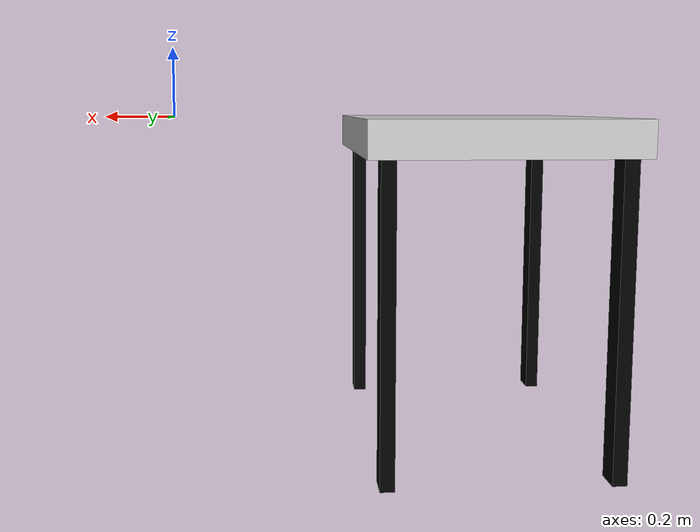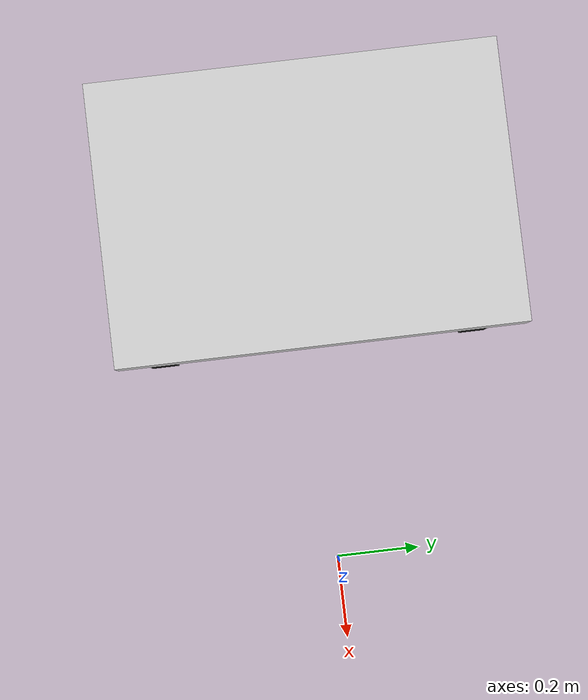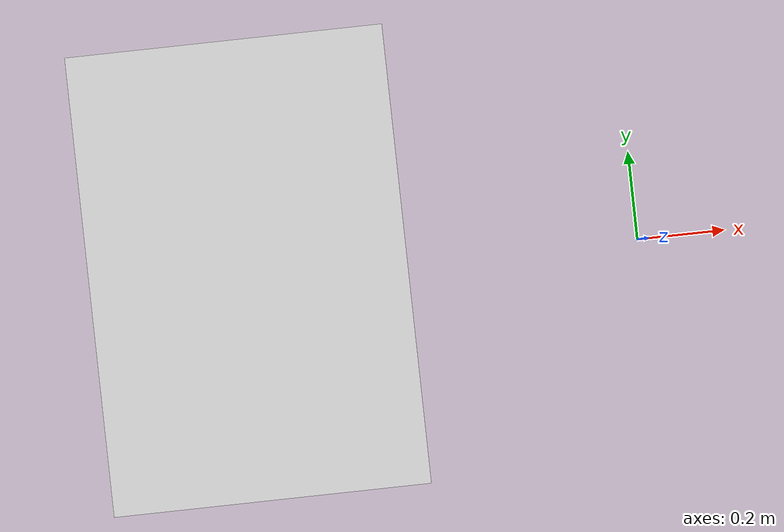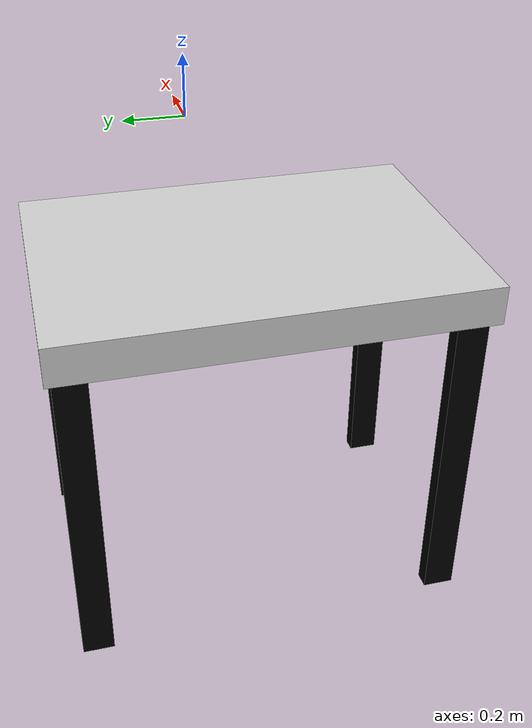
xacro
<?xml version="1.0"?>
<robot xmlns:xacro="http://www.ros.org/wiki/xacro"
       name="environment">

  <!-- MODELS -->
  <xacro:include filename="$(find boris_description)/model/table.urdf.xacro"/>
  <xacro:include filename="$(find boris_description)/model/wall.urdf.xacro"/>
  <xacro:include filename="$(find boris_description)/model/materials.urdf"/>

  <!-- WORKBENCH -->
  <link name="workbench_anchor"/>
  <xacro:model_table name="workbench"
                    parent="workbench_anchor"
                    length="0.725"
                    width="1.05"
                    height="0.960"
                    plate_thickness="0.1">
    <origin xyz="-1.25 0.55 0" rpy="0 0 0"/>
  </xacro:model_table>

</robot>

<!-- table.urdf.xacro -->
<robot xmlns:xacro="http://www.ros.org/wiki/xacro">

<xacro:property name="leg_width" value="0.08" />
<xacro:property name="border_offset" value="0.055" />

<!-- conversions -->
<!-- I couldn't make the simulation work with realistic values, so I tweaked the conversion values -->
<xacro:property name="mm_to_m" value="0.001"/>
<xacro:property name="mm2_to_m2" value="0.000001"/>
<xacro:property name="gr_to_Kg" value="0.001"/>

<!-- not so negligible, otherwise simulation fails -->
<xacro:property name="table_mass" value="${500000*gr_to_Kg}"/>
<xacro:property name="table_inertia">
    <origin xyz="0 0 0"/>
    <mass value="${table_mass}"/>
    <inertia ixx="${table_mass * 10 * mm2_to_m2}" ixy="0.0" ixz="0.0" iyy="${table_mass * 10 * mm2_to_m2}" iyz="0.0" izz="${table_mass * 10 * mm2_to_m2}"/>
</xacro:property>

<xacro:macro name="table_leg" params="parent name *origin">
    <joint name="${name}_joint" type="fixed">
        <xacro:insert_block name="origin"/>
        <parent link="${parent}" />
        <child link="${name}_link" />
    </joint>
    <link name="${name}_link">
        <inertial>
            <xacro:insert_block name="table_inertia"/>
        </inertial>
		<visual>
			<geometry>
				<box size="${leg_width/2} -${leg_width} ${height - plate_thickness}"/>
			</geometry>
			<material name="Boris/Black"/>
		</visual>
		<collision>
			<geometry>
				<box size="${leg_width/2} -${leg_width} ${height - plate_thickness}"/>
			</geometry>
		</collision>
    </link>

    <gazebo reference="${name}_link">
        <static>true</static>
    </gazebo>
</xacro:macro>

<xacro:macro name="model_table" params="parent name *origin length width height plate_thickness">
    <joint name="${parent}_${name}_base_joint" type="fixed">
        <xacro:insert_block name="origin"/>
        <parent link="${parent}"/>
        <child link="${name}_plate_link"/>
    </joint>
    <link name="${name}_plate_link">
        <inertial>
            <xacro:insert_block name="table_inertia"/>
        </inertial>
        <visual>
            <origin xyz="${1/2 * length} ${-1/2 * width} ${-1/2 * plate_thickness}"/>
            <geometry>
                <box size="${length} ${width} ${plate_thickness}"/>
			</geometry>
			<material name="Boris/LightGrey"/>
		</visual>
        <collision>
            <origin xyz="${1/2 * length} ${-1/2 * width} ${-1/2 * plate_thickness}"/>
            <geometry>
                <box size="${length} ${width} ${plate_thickness}"/>
            </geometry>
        </collision>
    </link>
    <xacro:table_leg parent="${name}_plate_link" name="${name}_leg_0">
        <origin xyz="${border_offset} -${border_offset} -${1/2 * (plate_thickness + height)}"/>
    </xacro:table_leg>
    <xacro:table_leg parent="${name}_plate_link" name="${name}_leg_1">
        <origin xyz="${length - border_offset} -${border_offset} -${1/2 * (plate_thickness + height)}"/>
    </xacro:table_leg>
    <xacro:table_leg parent="${name}_plate_link" name="${name}_leg_2">
        <origin xyz="${border_offset} -${width - border_offset} -${1/2 * (plate_thickness + height)}"/>
    </xacro:table_leg>
    <xacro:table_leg parent="${name}_plate_link" name="${name}_leg_3">
        <origin xyz="${length - border_offset} -${width - border_offset} -${1/2 * (plate_thickness + height)}"/>
    </xacro:table_leg>

    <gazebo reference="${name}_plate_link">
        <static>true</static>
    </gazebo>

</xacro:macro>
</robot>

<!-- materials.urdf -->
<robot>
  <material name="Boris/DarkGrey">
    <color rgba="0.3 0.3 0.3 1.0"/>
  </material>

  <material name="Boris/LightGrey">
    <color rgba="0.8 0.8 0.8 1.0"/>
  </material>

  <material name="Boris/Red">
    <color rgba="0.3 0.3 0.3 1.0"/>
  </material>

  <material name="Boris/Black">
    <color rgba="0 0 0 1.0"/>
  </material>

  <material name="Boris/Orange">
    <color rgba="0.0 0.0 0.8 1.0"/>
  </material>

  <material name="Boris/Silver">
    <color rgba="1.0 1.0 1.0 1.0"/>
  </material>

  <material name="Boris/Grey">
    <color rgba="0.7 0.7 0.7 1.0"/>
  </material>

  <material name="Boris/Blue">
    <color rgba="0.0 0.0 0.8 1.0"/>
  </material>

  <material name="Boris/HandGray">
    <color rgba="0.953 0.996 0.694 1.0"/>
  </material>

  <material name="Boris/SickBlue">
    <color rgba="0.3058 0.5921 0.7294 1.0"/>
  </material>

</robot>
